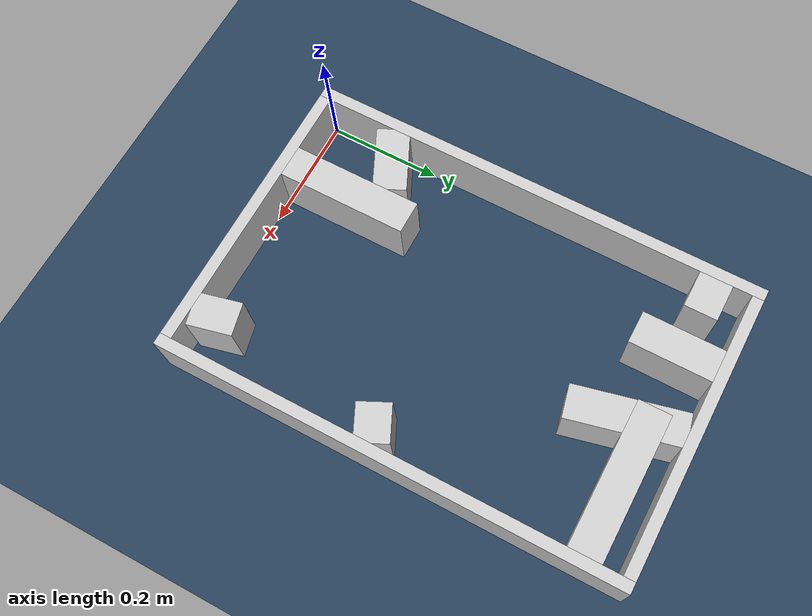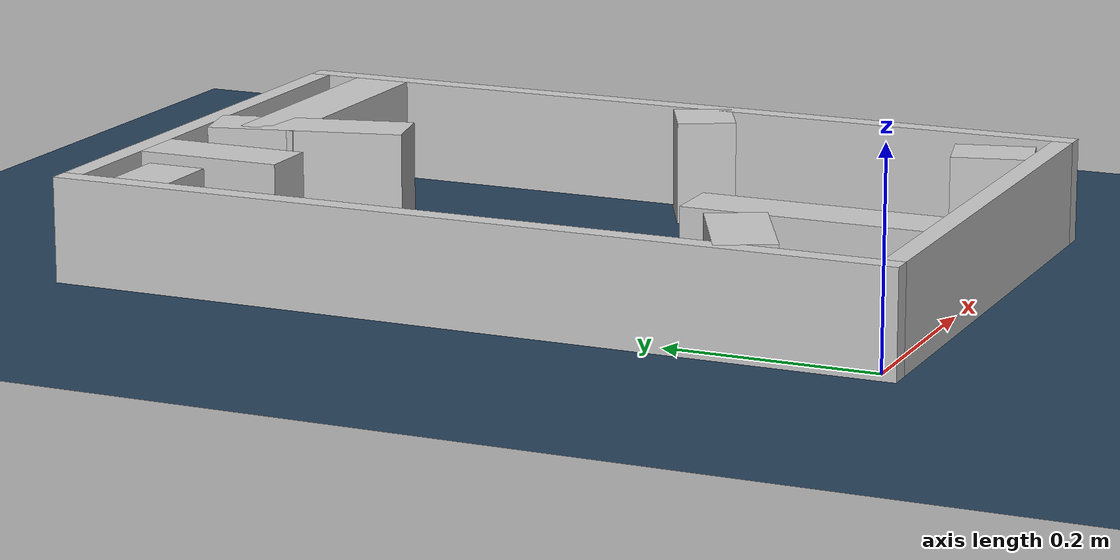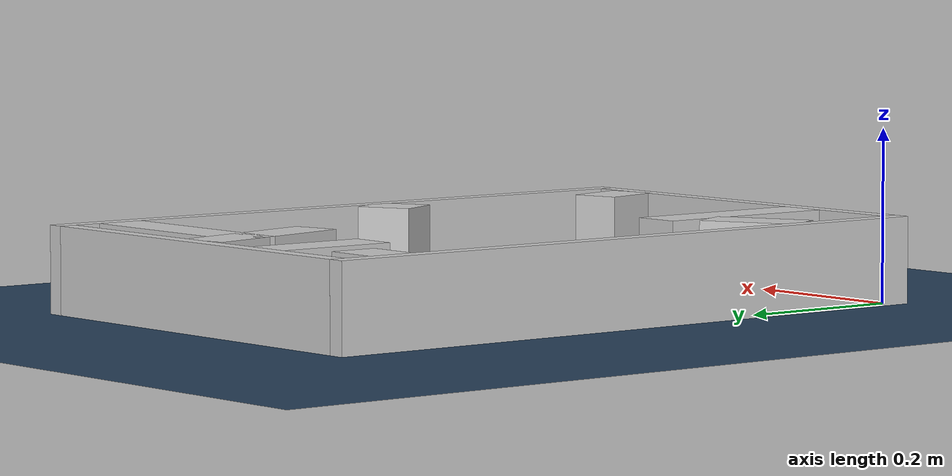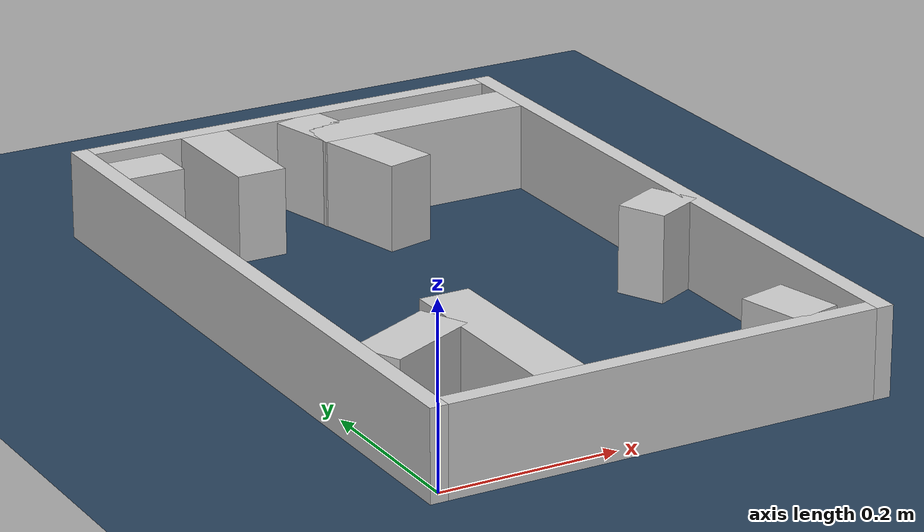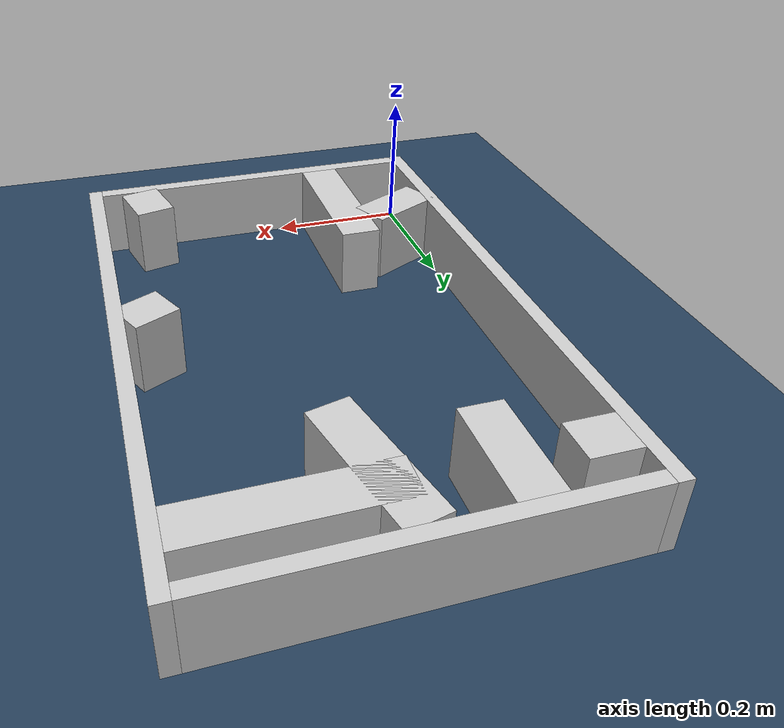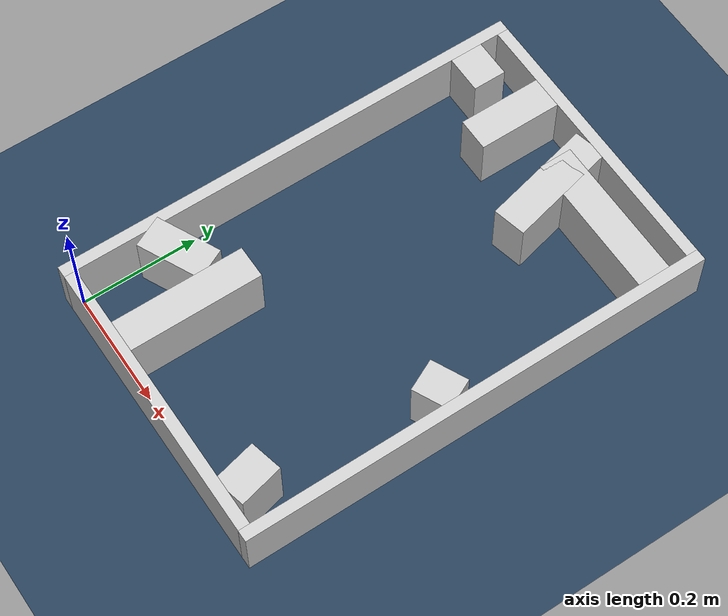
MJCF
<?xml version="1.0" ?>
<mujoco model="generated_real_template">
  <compiler angle="degree"/>
  <option timestep="0.002" integrator="implicitfast" iterations="100" cone="elliptic"/>
  <default>
    <geom density="1"/>
  </default>
  <asset>
    <texture builtin="gradient" height="3072" rgb1="0.3 0.5 0.7" rgb2="0 0 0" type="skybox" width="512"/>
    <texture builtin="checker" height="300" mark="edge" markrgb="0.8 0.8 0.8" name="groundplane" rgb1="0.2 0.3 0.4" rgb2="0.1 0.2 0.3" type="2d" width="300"/>
    <material name="groundplane" reflectance="0.2" texrepeat="5 5" texture="groundplane" texuniform="true"/>
  </asset>
  <worldbody>
    <light dir="0 0 -1" directional="true" pos="0 0 1.5"/>
    <geom name="floor" type="plane" condim="4" friction="0.5 0.005 0.001" material="groundplane" size="0 0 0.05"/>
    <body name="walls">
      <geom name="wall_boundary_left" type="box" condim="4" friction="1.0 0.005 0.0001" rgba="0.8 0.8 0.8 1" pos="-0.010000 0.387500 0.050000" euler="0 0 0.000000" size="0.010000 0.407500 0.050000"/>
      <geom name="wall_boundary_right" type="box" condim="4" friction="1.0 0.005 0.0001" rgba="0.8 0.8 0.8 1" pos="0.500000 0.387500 0.050000" euler="0 0 0.000000" size="0.010000 0.407500 0.050000"/>
      <geom name="wall_boundary_bottom" type="box" condim="4" friction="1.0 0.005 0.0001" rgba="0.8 0.8 0.8 1" pos="0.245000 -0.010000 0.050000" euler="0 0 0.000000" size="0.245000 0.010000 0.050000"/>
      <geom name="wall_boundary_top" type="box" condim="4" friction="1.0 0.005 0.0001" rgba="0.8 0.8 0.8 1" pos="0.245000 0.785000 0.050000" euler="0 0 0.000000" size="0.245000 0.010000 0.050000"/>
      <geom name="wall_inner_1_1" type="box" condim="4" friction="1.0 0.005 0.0001" rgba="0.8 0.8 0.8 1" pos="0.032599 0.713756 0.050000" euler="0 0 0.000000" size="0.032599 0.028500 0.050000"/>
      <geom name="wall_inner_1_2" type="box" condim="4" friction="1.0 0.005 0.0001" rgba="0.8 0.8 0.8 1" pos="0.364690 0.713756 0.050000" euler="0 0 0.000000" size="0.125310 0.028500 0.050000"/>
      <geom name="wall_inner_2_1" type="box" condim="4" friction="1.0 0.005 0.0001" rgba="0.8 0.8 0.8 1" pos="0.051739 0.148487 0.050000" euler="0 0 25.670525" size="0.057405 0.028500 0.050000"/>
      <geom name="wall_inner_2_2" type="box" condim="4" friction="1.0 0.005 0.0001" rgba="0.8 0.8 0.8 1" pos="0.460610 0.345004 0.050000" euler="0 0 25.670525" size="0.032608 0.028500 0.050000"/>
      <geom name="wall_inner_3_1" type="box" condim="4" friction="1.0 0.005 0.0001" rgba="0.8 0.8 0.8 1" pos="0.133491 0.113612 0.050000" euler="0 0 90.000000" size="0.113612 0.028500 0.050000"/>
      <geom name="wall_inner_3_2" type="box" condim="4" friction="1.0 0.005 0.0001" rgba="0.8 0.8 0.8 1" pos="0.133491 0.703902 0.050000" euler="0 0 90.000000" size="0.071098 0.028500 0.050000"/>
      <geom name="wall_inner_4_1" type="box" condim="4" friction="1.0 0.005 0.0001" rgba="0.8 0.8 0.8 1" pos="0.271191 0.681304 0.050000" euler="0 0 -76.680400" size="0.096286 0.028500 0.050000"/>
      <geom name="wall_inner_4_2" type="box" condim="4" friction="1.0 0.005 0.0001" rgba="0.8 0.8 0.8 1" pos="0.423637 0.037393 0.050000" euler="0 0 -76.680400" size="0.038426 0.028500 0.050000"/>
    </body>
  </worldbody>
</mujoco>
